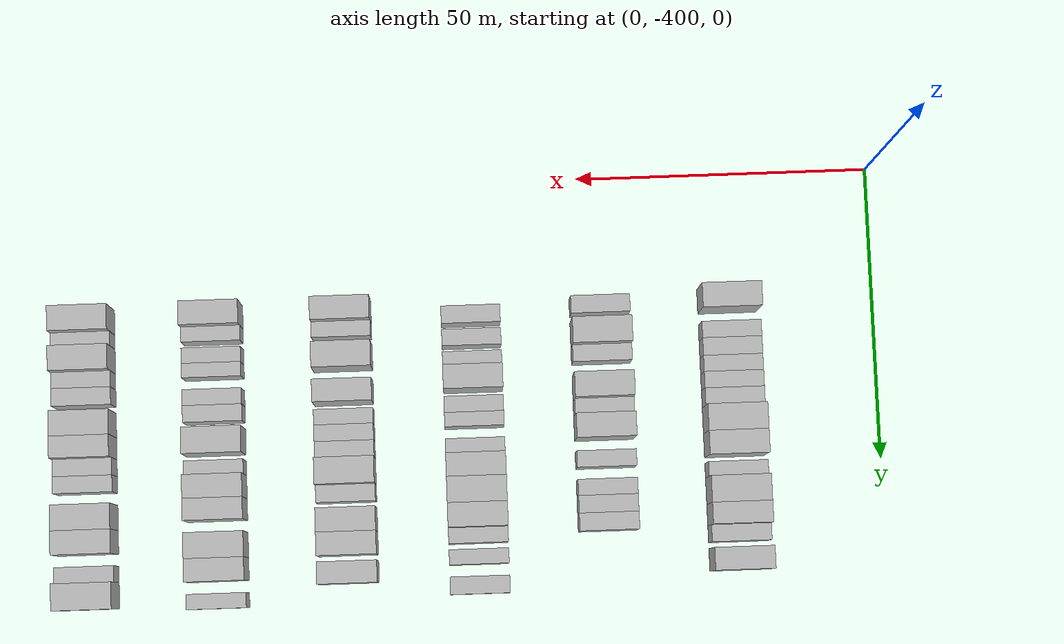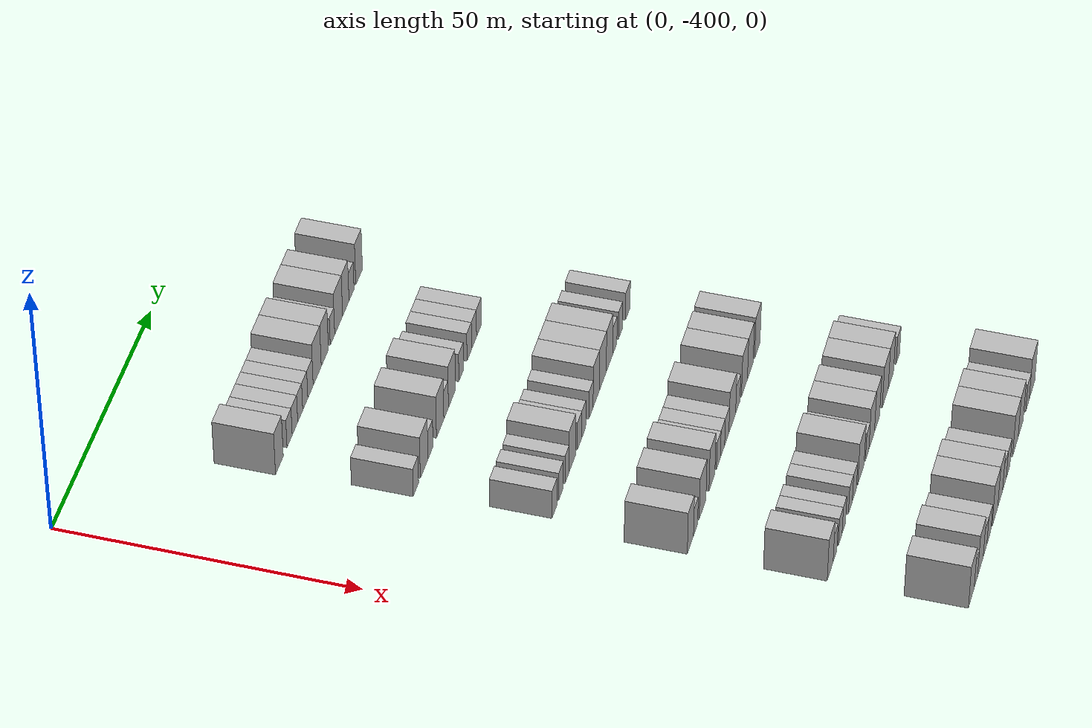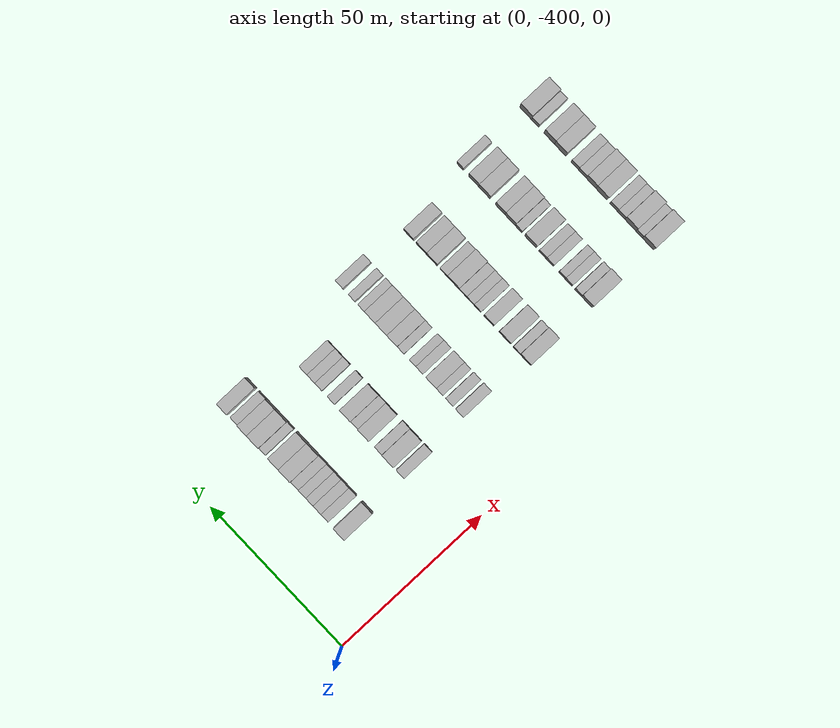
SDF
<sdf version="1.6">
 <world name="default">
  <model name="building_1">
   <static>1</static>
   <pose>25.0000 -377.9180 0 0.000000 0.000000 0.000000</pose>
   <link name="link">
    <pose>0 0 4.50 0 0 0</pose>
    <collision name="collision"><geometry><box><size>10.0000 4.1641 9.0000</size></box></geometry></collision>
    <visual name="visual">
     <cast_shadows>0</cast_shadows>
     <geometry><box><size>10.0000 4.1641 9.0000</size></box></geometry>
     <material>
      <script>
       <uri>model://HANNAS_wall/materials/scripts</uri>
       <uri>model://HANNAS_wall/materials/textures</uri>
       <name>vrc/HANNAS_wall</name>
      </script>
     </material>
    </visual>
   </link>
  </model>
  <model name="building_2">
   <static>1</static>
   <pose>25.0000 -372.4403 0 0.000000 0.000000 0.000000</pose>
   <link name="link">
    <pose>0 0 3.00 0 0 0</pose>
    <collision name="collision"><geometry><box><size>10.0000 2.7912 6.0000</size></box></geometry></collision>
    <visual name="visual">
     <cast_shadows>0</cast_shadows>
     <geometry><box><size>10.0000 2.7912 6.0000</size></box></geometry>
     <material>
      <script>
       <uri>model://HANNAS_wall/materials/scripts</uri>
       <uri>model://HANNAS_wall/materials/textures</uri>
       <name>vrc/HANNAS_wall</name>
      </script>
     </material>
    </visual>
   </link>
  </model>
  <model name="building_3">
   <static>1</static>
   <pose>25.0000 -369.5470 0 0.000000 0.000000 0.000000</pose>
   <link name="link">
    <pose>0 0 3.00 0 0 0</pose>
    <collision name="collision"><geometry><box><size>10.0000 2.9956 6.0000</size></box></geometry></collision>
    <visual name="visual">
     <cast_shadows>0</cast_shadows>
     <geometry><box><size>10.0000 2.9956 6.0000</size></box></geometry>
     <material>
      <script>
       <uri>model://HANNAS_wall/materials/scripts</uri>
       <uri>model://HANNAS_wall/materials/textures</uri>
       <name>vrc/HANNAS_wall</name>
      </script>
     </material>
    </visual>
   </link>
  </model>
  <model name="building_4">
   <static>1</static>
   <pose>25.0000 -366.6835 0 0.000000 0.000000 0.000000</pose>
   <link name="link">
    <pose>0 0 3.00 0 0 0</pose>
    <collision name="collision"><geometry><box><size>10.0000 2.7314 6.0000</size></box></geometry></collision>
    <visual name="visual">
     <cast_shadows>0</cast_shadows>
     <geometry><box><size>10.0000 2.7314 6.0000</size></box></geometry>
     <material>
      <script>
       <uri>model://HANNAS_wall/materials/scripts</uri>
       <uri>model://HANNAS_wall/materials/textures</uri>
       <name>vrc/HANNAS_wall</name>
      </script>
     </material>
    </visual>
   </link>
  </model>
  <model name="building_5">
   <static>1</static>
   <pose>25.0000 -363.9292 0 0.000000 0.000000 0.000000</pose>
   <link name="link">
    <pose>0 0 3.00 0 0 0</pose>
    <collision name="collision"><geometry><box><size>10.0000 2.7772 6.0000</size></box></geometry></collision>
    <visual name="visual">
     <cast_shadows>0</cast_shadows>
     <geometry><box><size>10.0000 2.7772 6.0000</size></box></geometry>
     <material>
      <script>
       <uri>model://HANNAS_wall/materials/scripts</uri>
       <uri>model://HANNAS_wall/materials/textures</uri>
       <name>vrc/HANNAS_wall</name>
      </script>
     </material>
    </visual>
   </link>
  </model>
  <model name="building_6">
   <static>1</static>
   <pose>25.0000 -361.0685 0 0.000000 0.000000 0.000000</pose>
   <link name="link">
    <pose>0 0 3.00 0 0 0</pose>
    <collision name="collision"><geometry><box><size>10.0000 2.9442 6.0000</size></box></geometry></collision>
    <visual name="visual">
     <cast_shadows>0</cast_shadows>
     <geometry><box><size>10.0000 2.9442 6.0000</size></box></geometry>
     <material>
      <script>
       <uri>model://HANNAS_wall/materials/scripts</uri>
       <uri>model://HANNAS_wall/materials/textures</uri>
       <name>vrc/HANNAS_wall</name>
      </script>
     </material>
    </visual>
   </link>
  </model>
  <model name="building_7">
   <static>1</static>
   <pose>25.0000 -357.3652 0 0.000000 0.000000 0.000000</pose>
   <link name="link">
    <pose>0 0 4.50 0 0 0</pose>
    <collision name="collision"><geometry><box><size>10.0000 4.4624 9.0000</size></box></geometry></collision>
    <visual name="visual">
     <cast_shadows>0</cast_shadows>
     <geometry><box><size>10.0000 4.4624 9.0000</size></box></geometry>
     <material>
      <script>
       <uri>model://HANNAS_wall/materials/scripts</uri>
       <uri>model://HANNAS_wall/materials/textures</uri>
       <name>vrc/HANNAS_wall</name>
      </script>
     </material>
    </visual>
   </link>
  </model>
  <model name="building_8">
   <static>1</static>
   <pose>25.0000 -353.1340 0 0.000000 0.000000 0.000000</pose>
   <link name="link">
    <pose>0 0 4.50 0 0 0</pose>
    <collision name="collision"><geometry><box><size>10.0000 4.0000 9.0000</size></box></geometry></collision>
    <visual name="visual">
     <cast_shadows>0</cast_shadows>
     <geometry><box><size>10.0000 4.0000 9.0000</size></box></geometry>
     <material>
      <script>
       <uri>model://HANNAS_wall/materials/scripts</uri>
       <uri>model://HANNAS_wall/materials/textures</uri>
       <name>vrc/HANNAS_wall</name>
      </script>
     </material>
    </visual>
   </link>
  </model>
  <model name="building_9">
   <static>1</static>
   <pose>25.0000 -348.8813 0 0.000000 0.000000 0.000000</pose>
   <link name="link">
    <pose>0 0 3.00 0 0 0</pose>
    <collision name="collision"><geometry><box><size>10.0000 2.5055 6.0000</size></box></geometry></collision>
    <visual name="visual">
     <cast_shadows>0</cast_shadows>
     <geometry><box><size>10.0000 2.5055 6.0000</size></box></geometry>
     <material>
      <script>
       <uri>model://HANNAS_wall/materials/scripts</uri>
       <uri>model://HANNAS_wall/materials/textures</uri>
       <name>vrc/HANNAS_wall</name>
      </script>
     </material>
    </visual>
   </link>
  </model>
  <model name="building_10">
   <static>1</static>
   <pose>25.0000 -345.4044 0 0.000000 0.000000 0.000000</pose>
   <link name="link">
    <pose>0 0 4.50 0 0 0</pose>
    <collision name="collision"><geometry><box><size>10.0000 4.4482 9.0000</size></box></geometry></collision>
    <visual name="visual">
     <cast_shadows>0</cast_shadows>
     <geometry><box><size>10.0000 4.4482 9.0000</size></box></geometry>
     <material>
      <script>
       <uri>model://HANNAS_wall/materials/scripts</uri>
       <uri>model://HANNAS_wall/materials/textures</uri>
       <name>vrc/HANNAS_wall</name>
      </script>
     </material>
    </visual>
   </link>
  </model>
  <model name="building_11">
   <static>1</static>
   <pose>25.0000 -341.3734 0 0.000000 0.000000 0.000000</pose>
   <link name="link">
    <pose>0 0 4.50 0 0 0</pose>
    <collision name="collision"><geometry><box><size>10.0000 3.6137 9.0000</size></box></geometry></collision>
    <visual name="visual">
     <cast_shadows>0</cast_shadows>
     <geometry><box><size>10.0000 3.6137 9.0000</size></box></geometry>
     <material>
      <script>
       <uri>model://HANNAS_wall/materials/scripts</uri>
       <uri>model://HANNAS_wall/materials/textures</uri>
       <name>vrc/HANNAS_wall</name>
      </script>
     </material>
    </visual>
   </link>
  </model>
  <model name="building_12">
   <static>1</static>
   <pose>25.0000 -338.1369 0 0.000000 0.000000 0.000000</pose>
   <link name="link">
    <pose>0 0 3.00 0 0 0</pose>
    <collision name="collision"><geometry><box><size>10.0000 2.8593 6.0000</size></box></geometry></collision>
    <visual name="visual">
     <cast_shadows>0</cast_shadows>
     <geometry><box><size>10.0000 2.8593 6.0000</size></box></geometry>
     <material>
      <script>
       <uri>model://HANNAS_wall/materials/scripts</uri>
       <uri>model://HANNAS_wall/materials/textures</uri>
       <name>vrc/HANNAS_wall</name>
      </script>
     </material>
    </visual>
   </link>
  </model>
  <model name="building_13">
   <static>1</static>
   <pose>25.0000 -333.8080 0 0.000000 0.000000 0.000000</pose>
   <link name="link">
    <pose>0 0 4.50 0 0 0</pose>
    <collision name="collision"><geometry><box><size>10.0000 3.7986 9.0000</size></box></geometry></collision>
    <visual name="visual">
     <cast_shadows>0</cast_shadows>
     <geometry><box><size>10.0000 3.7986 9.0000</size></box></geometry>
     <material>
      <script>
       <uri>model://HANNAS_wall/materials/scripts</uri>
       <uri>model://HANNAS_wall/materials/textures</uri>
       <name>vrc/HANNAS_wall</name>
      </script>
     </material>
    </visual>
   </link>
  </model>
  <model name="building_186">
   <static>1</static>
   <pose>47.0000 -377.5033 0 0.000000 0.000000 0.000000</pose>
   <link name="link">
    <pose>0 0 3.00 0 0 0</pose>
    <collision name="collision"><geometry><box><size>10.0000 2.9934 6.0000</size></box></geometry></collision>
    <visual name="visual">
     <cast_shadows>0</cast_shadows>
     <geometry><box><size>10.0000 2.9934 6.0000</size></box></geometry>
     <material>
      <script>
       <uri>model://HANNAS_wall/materials/scripts</uri>
       <uri>model://HANNAS_wall/materials/textures</uri>
       <name>vrc/HANNAS_wall</name>
      </script>
     </material>
    </visual>
   </link>
  </model>
  <model name="building_187">
   <static>1</static>
   <pose>47.0000 -372.8135 0 0.000000 0.000000 0.000000</pose>
   <link name="link">
    <pose>0 0 4.50 0 0 0</pose>
    <collision name="collision"><geometry><box><size>10.0000 4.3862 9.0000</size></box></geometry></collision>
    <visual name="visual">
     <cast_shadows>0</cast_shadows>
     <geometry><box><size>10.0000 4.3862 9.0000</size></box></geometry>
     <material>
      <script>
       <uri>model://HANNAS_wall/materials/scripts</uri>
       <uri>model://HANNAS_wall/materials/textures</uri>
       <name>vrc/HANNAS_wall</name>
      </script>
     </material>
    </visual>
   </link>
  </model>
  <model name="building_188">
   <static>1</static>
   <pose>47.0000 -369.1924 0 0.000000 0.000000 0.000000</pose>
   <link name="link">
    <pose>0 0 3.00 0 0 0</pose>
    <collision name="collision"><geometry><box><size>10.0000 2.8560 6.0000</size></box></geometry></collision>
    <visual name="visual">
     <cast_shadows>0</cast_shadows>
     <geometry><box><size>10.0000 2.8560 6.0000</size></box></geometry>
     <material>
      <script>
       <uri>model://HANNAS_wall/materials/scripts</uri>
       <uri>model://HANNAS_wall/materials/textures</uri>
       <name>vrc/HANNAS_wall</name>
      </script>
     </material>
    </visual>
   </link>
  </model>
  <model name="building_189">
   <static>1</static>
   <pose>47.0000 -363.6487 0 0.000000 0.000000 0.000000</pose>
   <link name="link">
    <pose>0 0 4.50 0 0 0</pose>
    <collision name="collision"><geometry><box><size>10.0000 4.2314 9.0000</size></box></geometry></collision>
    <visual name="visual">
     <cast_shadows>0</cast_shadows>
     <geometry><box><size>10.0000 4.2314 9.0000</size></box></geometry>
     <material>
      <script>
       <uri>model://HANNAS_wall/materials/scripts</uri>
       <uri>model://HANNAS_wall/materials/textures</uri>
       <name>vrc/HANNAS_wall</name>
      </script>
     </material>
    </visual>
   </link>
  </model>
  <model name="building_190">
   <static>1</static>
   <pose>47.0000 -360.1822 0 0.000000 0.000000 0.000000</pose>
   <link name="link">
    <pose>0 0 3.00 0 0 0</pose>
    <collision name="collision"><geometry><box><size>10.0000 2.7015 6.0000</size></box></geometry></collision>
    <visual name="visual">
     <cast_shadows>0</cast_shadows>
     <geometry><box><size>10.0000 2.7015 6.0000</size></box></geometry>
     <material>
      <script>
       <uri>model://HANNAS_wall/materials/scripts</uri>
       <uri>model://HANNAS_wall/materials/textures</uri>
       <name>vrc/HANNAS_wall</name>
      </script>
     </material>
    </visual>
   </link>
  </model>
  <model name="building_191">
   <static>1</static>
   <pose>47.0000 -356.7753 0 0.000000 0.000000 0.000000</pose>
   <link name="link">
    <pose>0 0 4.50 0 0 0</pose>
    <collision name="collision"><geometry><box><size>10.0000 4.1123 9.0000</size></box></geometry></collision>
    <visual name="visual">
     <cast_shadows>0</cast_shadows>
     <geometry><box><size>10.0000 4.1123 9.0000</size></box></geometry>
     <material>
      <script>
       <uri>model://HANNAS_wall/materials/scripts</uri>
       <uri>model://HANNAS_wall/materials/textures</uri>
       <name>vrc/HANNAS_wall</name>
      </script>
     </material>
    </visual>
   </link>
  </model>
  <model name="building_192">
   <static>1</static>
   <pose>47.0000 -351.3215 0 0.000000 0.000000 0.000000</pose>
   <link name="link">
    <pose>0 0 3.00 0 0 0</pose>
    <collision name="collision"><geometry><box><size>10.0000 2.7954 6.0000</size></box></geometry></collision>
    <visual name="visual">
     <cast_shadows>0</cast_shadows>
     <geometry><box><size>10.0000 2.7954 6.0000</size></box></geometry>
     <material>
      <script>
       <uri>model://HANNAS_wall/materials/scripts</uri>
       <uri>model://HANNAS_wall/materials/textures</uri>
       <name>vrc/HANNAS_wall</name>
      </script>
     </material>
    </visual>
   </link>
  </model>
  <model name="building_193">
   <static>1</static>
   <pose>47.0000 -346.5672 0 0.000000 0.000000 0.000000</pose>
   <link name="link">
    <pose>0 0 3.00 0 0 0</pose>
    <collision name="collision"><geometry><box><size>10.0000 2.7132 6.0000</size></box></geometry></collision>
    <visual name="visual">
     <cast_shadows>0</cast_shadows>
     <geometry><box><size>10.0000 2.7132 6.0000</size></box></geometry>
     <material>
      <script>
       <uri>model://HANNAS_wall/materials/scripts</uri>
       <uri>model://HANNAS_wall/materials/textures</uri>
       <name>vrc/HANNAS_wall</name>
      </script>
     </material>
    </visual>
   </link>
  </model>
  <model name="building_194">
   <static>1</static>
   <pose>47.0000 -343.7433 0 0.000000 0.000000 0.000000</pose>
   <link name="link">
    <pose>0 0 3.00 0 0 0</pose>
    <collision name="collision"><geometry><box><size>10.0000 2.9347 6.0000</size></box></geometry></collision>
    <visual name="visual">
     <cast_shadows>0</cast_shadows>
     <geometry><box><size>10.0000 2.9347 6.0000</size></box></geometry>
     <material>
      <script>
       <uri>model://HANNAS_wall/materials/scripts</uri>
       <uri>model://HANNAS_wall/materials/textures</uri>
       <name>vrc/HANNAS_wall</name>
      </script>
     </material>
    </visual>
   </link>
  </model>
  <model name="building_195">
   <static>1</static>
   <pose>47.0000 -340.7795 0 0.000000 0.000000 0.000000</pose>
   <link name="link">
    <pose>0 0 3.00 0 0 0</pose>
    <collision name="collision"><geometry><box><size>10.0000 2.9928 6.0000</size></box></geometry></collision>
    <visual name="visual">
     <cast_shadows>0</cast_shadows>
     <geometry><box><size>10.0000 2.9928 6.0000</size></box></geometry>
     <material>
      <script>
       <uri>model://HANNAS_wall/materials/scripts</uri>
       <uri>model://HANNAS_wall/materials/textures</uri>
       <name>vrc/HANNAS_wall</name>
      </script>
     </material>
    </visual>
   </link>
  </model>
  <model name="building_361">
   <static>1</static>
   <pose>69.0000 -376.5117 0 0.000000 0.000000 0.000000</pose>
   <link name="link">
    <pose>0 0 3.00 0 0 0</pose>
    <collision name="collision"><geometry><box><size>10.0000 2.9767 6.0000</size></box></geometry></collision>
    <visual name="visual">
     <cast_shadows>0</cast_shadows>
     <geometry><box><size>10.0000 2.9767 6.0000</size></box></geometry>
     <material>
      <script>
       <uri>model://HANNAS_wall/materials/scripts</uri>
       <uri>model://HANNAS_wall/materials/textures</uri>
       <name>vrc/HANNAS_wall</name>
      </script>
     </material>
    </visual>
   </link>
  </model>
  <model name="building_362">
   <static>1</static>
   <pose>69.0000 -372.6216 0 0.000000 0.000000 0.000000</pose>
   <link name="link">
    <pose>0 0 3.00 0 0 0</pose>
    <collision name="collision"><geometry><box><size>10.0000 2.8035 6.0000</size></box></geometry></collision>
    <visual name="visual">
     <cast_shadows>0</cast_shadows>
     <geometry><box><size>10.0000 2.8035 6.0000</size></box></geometry>
     <material>
      <script>
       <uri>model://HANNAS_wall/materials/scripts</uri>
       <uri>model://HANNAS_wall/materials/textures</uri>
       <name>vrc/HANNAS_wall</name>
      </script>
     </material>
    </visual>
   </link>
  </model>
  <model name="building_363">
   <static>1</static>
   <pose>69.0000 -368.9727 0 0.000000 0.000000 0.000000</pose>
   <link name="link">
    <pose>0 0 3.00 0 0 0</pose>
    <collision name="collision"><geometry><box><size>10.0000 2.4941 6.0000</size></box></geometry></collision>
    <visual name="visual">
     <cast_shadows>0</cast_shadows>
     <geometry><box><size>10.0000 2.4941 6.0000</size></box></geometry>
     <material>
      <script>
       <uri>model://HANNAS_wall/materials/scripts</uri>
       <uri>model://HANNAS_wall/materials/textures</uri>
       <name>vrc/HANNAS_wall</name>
      </script>
     </material>
    </visual>
   </link>
  </model>
  <model name="building_364">
   <static>1</static>
   <pose>69.0000 -365.6938 0 0.000000 0.000000 0.000000</pose>
   <link name="link">
    <pose>0 0 4.50 0 0 0</pose>
    <collision name="collision"><geometry><box><size>10.0000 4.0637 9.0000</size></box></geometry></collision>
    <visual name="visual">
     <cast_shadows>0</cast_shadows>
     <geometry><box><size>10.0000 4.0637 9.0000</size></box></geometry>
     <material>
      <script>
       <uri>model://HANNAS_wall/materials/scripts</uri>
       <uri>model://HANNAS_wall/materials/textures</uri>
       <name>vrc/HANNAS_wall</name>
      </script>
     </material>
    </visual>
   </link>
  </model>
  <model name="building_365">
   <static>1</static>
   <pose>69.0000 -361.2986 0 0.000000 0.000000 0.000000</pose>
   <link name="link">
    <pose>0 0 3.00 0 0 0</pose>
    <collision name="collision"><geometry><box><size>10.0000 2.7268 6.0000</size></box></geometry></collision>
    <visual name="visual">
     <cast_shadows>0</cast_shadows>
     <geometry><box><size>10.0000 2.7268 6.0000</size></box></geometry>
     <material>
      <script>
       <uri>model://HANNAS_wall/materials/scripts</uri>
       <uri>model://HANNAS_wall/materials/textures</uri>
       <name>vrc/HANNAS_wall</name>
      </script>
     </material>
    </visual>
   </link>
  </model>
  <model name="building_366">
   <static>1</static>
   <pose>69.0000 -358.7259 0 0.000000 0.000000 0.000000</pose>
   <link name="link">
    <pose>0 0 3.00 0 0 0</pose>
    <collision name="collision"><geometry><box><size>10.0000 2.4185 6.0000</size></box></geometry></collision>
    <visual name="visual">
     <cast_shadows>0</cast_shadows>
     <geometry><box><size>10.0000 2.4185 6.0000</size></box></geometry>
     <material>
      <script>
       <uri>model://HANNAS_wall/materials/scripts</uri>
       <uri>model://HANNAS_wall/materials/textures</uri>
       <name>vrc/HANNAS_wall</name>
      </script>
     </material>
    </visual>
   </link>
  </model>
  <model name="building_367">
   <static>1</static>
   <pose>69.0000 -354.2357 0 0.000000 0.000000 0.000000</pose>
   <link name="link">
    <pose>0 0 3.00 0 0 0</pose>
    <collision name="collision"><geometry><box><size>10.0000 2.5620 6.0000</size></box></geometry></collision>
    <visual name="visual">
     <cast_shadows>0</cast_shadows>
     <geometry><box><size>10.0000 2.5620 6.0000</size></box></geometry>
     <material>
      <script>
       <uri>model://HANNAS_wall/materials/scripts</uri>
       <uri>model://HANNAS_wall/materials/textures</uri>
       <name>vrc/HANNAS_wall</name>
      </script>
     </material>
    </visual>
   </link>
  </model>
  <model name="building_368">
   <static>1</static>
   <pose>69.0000 -350.9870 0 0.000000 0.000000 0.000000</pose>
   <link name="link">
    <pose>0 0 4.50 0 0 0</pose>
    <collision name="collision"><geometry><box><size>10.0000 3.9354 9.0000</size></box></geometry></collision>
    <visual name="visual">
     <cast_shadows>0</cast_shadows>
     <geometry><box><size>10.0000 3.9354 9.0000</size></box></geometry>
     <material>
      <script>
       <uri>model://HANNAS_wall/materials/scripts</uri>
       <uri>model://HANNAS_wall/materials/textures</uri>
       <name>vrc/HANNAS_wall</name>
      </script>
     </material>
    </visual>
   </link>
  </model>
  <model name="building_369">
   <static>1</static>
   <pose>69.0000 -346.8364 0 0.000000 0.000000 0.000000</pose>
   <link name="link">
    <pose>0 0 4.50 0 0 0</pose>
    <collision name="collision"><geometry><box><size>10.0000 4.3658 9.0000</size></box></geometry></collision>
    <visual name="visual">
     <cast_shadows>0</cast_shadows>
     <geometry><box><size>10.0000 4.3658 9.0000</size></box></geometry>
     <material>
      <script>
       <uri>model://HANNAS_wall/materials/scripts</uri>
       <uri>model://HANNAS_wall/materials/textures</uri>
       <name>vrc/HANNAS_wall</name>
      </script>
     </material>
    </visual>
   </link>
  </model>
  <model name="building_370">
   <static>1</static>
   <pose>69.0000 -342.6107 0 0.000000 0.000000 0.000000</pose>
   <link name="link">
    <pose>0 0 4.50 0 0 0</pose>
    <collision name="collision"><geometry><box><size>10.0000 4.0856 9.0000</size></box></geometry></collision>
    <visual name="visual">
     <cast_shadows>0</cast_shadows>
     <geometry><box><size>10.0000 4.0856 9.0000</size></box></geometry>
     <material>
      <script>
       <uri>model://HANNAS_wall/materials/scripts</uri>
       <uri>model://HANNAS_wall/materials/textures</uri>
       <name>vrc/HANNAS_wall</name>
      </script>
     </material>
    </visual>
   </link>
  </model>
  <model name="building_371">
   <static>1</static>
   <pose>69.0000 -339.2539 0 0.000000 0.000000 0.000000</pose>
   <link name="link">
    <pose>0 0 3.00 0 0 0</pose>
    <collision name="collision"><geometry><box><size>10.0000 2.6279 6.0000</size></box></geometry></collision>
    <visual name="visual">
     <cast_shadows>0</cast_shadows>
     <geometry><box><size>10.0000 2.6279 6.0000</size></box></geometry>
     <material>
      <script>
       <uri>model://HANNAS_wall/materials/scripts</uri>
       <uri>model://HANNAS_wall/materials/textures</uri>
       <name>vrc/HANNAS_wall</name>
      </script>
     </material>
    </visual>
   </link>
  </model>
  <model name="building_372">
   <static>1</static>
   <pose>69.0000 -335.6719 0 0.000000 0.000000 0.000000</pose>
   <link name="link">
    <pose>0 0 3.00 0 0 0</pose>
    <collision name="collision"><geometry><box><size>10.0000 2.5361 6.0000</size></box></geometry></collision>
    <visual name="visual">
     <cast_shadows>0</cast_shadows>
     <geometry><box><size>10.0000 2.5361 6.0000</size></box></geometry>
     <material>
      <script>
       <uri>model://HANNAS_wall/materials/scripts</uri>
       <uri>model://HANNAS_wall/materials/textures</uri>
       <name>vrc/HANNAS_wall</name>
      </script>
     </material>
    </visual>
   </link>
  </model>
  <model name="building_373">
   <static>1</static>
   <pose>69.0000 -330.9331 0 0.000000 0.000000 0.000000</pose>
   <link name="link">
    <pose>0 0 3.00 0 0 0</pose>
    <collision name="collision"><geometry><box><size>10.0000 2.9416 6.0000</size></box></geometry></collision>
    <visual name="visual">
     <cast_shadows>0</cast_shadows>
     <geometry><box><size>10.0000 2.9416 6.0000</size></box></geometry>
     <material>
      <script>
       <uri>model://HANNAS_wall/materials/scripts</uri>
       <uri>model://HANNAS_wall/materials/textures</uri>
       <name>vrc/HANNAS_wall</name>
      </script>
     </material>
    </visual>
   </link>
  </model>
  <model name="building_554">
   <static>1</static>
   <pose>91.0000 -378.0376 0 0.000000 0.000000 0.000000</pose>
   <link name="link">
    <pose>0 0 4.50 0 0 0</pose>
    <collision name="collision"><geometry><box><size>10.0000 3.9249 9.0000</size></box></geometry></collision>
    <visual name="visual">
     <cast_shadows>0</cast_shadows>
     <geometry><box><size>10.0000 3.9249 9.0000</size></box></geometry>
     <material>
      <script>
       <uri>model://HANNAS_wall/materials/scripts</uri>
       <uri>model://HANNAS_wall/materials/textures</uri>
       <name>vrc/HANNAS_wall</name>
      </script>
     </material>
    </visual>
   </link>
  </model>
  <model name="building_555">
   <static>1</static>
   <pose>91.0000 -374.7478 0 0.000000 0.000000 0.000000</pose>
   <link name="link">
    <pose>0 0 3.00 0 0 0</pose>
    <collision name="collision"><geometry><box><size>10.0000 2.6546 6.0000</size></box></geometry></collision>
    <visual name="visual">
     <cast_shadows>0</cast_shadows>
     <geometry><box><size>10.0000 2.6546 6.0000</size></box></geometry>
     <material>
      <script>
       <uri>model://HANNAS_wall/materials/scripts</uri>
       <uri>model://HANNAS_wall/materials/textures</uri>
       <name>vrc/HANNAS_wall</name>
      </script>
     </material>
    </visual>
   </link>
  </model>
  <model name="building_556">
   <static>1</static>
   <pose>91.0000 -370.2367 0 0.000000 0.000000 0.000000</pose>
   <link name="link">
    <pose>0 0 4.50 0 0 0</pose>
    <collision name="collision"><geometry><box><size>10.0000 4.3676 9.0000</size></box></geometry></collision>
    <visual name="visual">
     <cast_shadows>0</cast_shadows>
     <geometry><box><size>10.0000 4.3676 9.0000</size></box></geometry>
     <material>
      <script>
       <uri>model://HANNAS_wall/materials/scripts</uri>
       <uri>model://HANNAS_wall/materials/textures</uri>
       <name>vrc/HANNAS_wall</name>
      </script>
     </material>
    </visual>
   </link>
  </model>
  <model name="building_557">
   <static>1</static>
   <pose>91.0000 -364.1396 0 0.000000 0.000000 0.000000</pose>
   <link name="link">
    <pose>0 0 4.50 0 0 0</pose>
    <collision name="collision"><geometry><box><size>10.0000 3.8268 9.0000</size></box></geometry></collision>
    <visual name="visual">
     <cast_shadows>0</cast_shadows>
     <geometry><box><size>10.0000 3.8268 9.0000</size></box></geometry>
     <material>
      <script>
       <uri>model://HANNAS_wall/materials/scripts</uri>
       <uri>model://HANNAS_wall/materials/textures</uri>
       <name>vrc/HANNAS_wall</name>
      </script>
     </material>
    </visual>
   </link>
  </model>
  <model name="building_558">
   <static>1</static>
   <pose>91.0000 -359.9173 0 0.000000 0.000000 0.000000</pose>
   <link name="link">
    <pose>0 0 3.00 0 0 0</pose>
    <collision name="collision"><geometry><box><size>10.0000 2.6177 6.0000</size></box></geometry></collision>
    <visual name="visual">
     <cast_shadows>0</cast_shadows>
     <geometry><box><size>10.0000 2.6177 6.0000</size></box></geometry>
     <material>
      <script>
       <uri>model://HANNAS_wall/materials/scripts</uri>
       <uri>model://HANNAS_wall/materials/textures</uri>
       <name>vrc/HANNAS_wall</name>
      </script>
     </material>
    </visual>
   </link>
  </model>
  <model name="building_559">
   <static>1</static>
   <pose>91.0000 -357.2056 0 0.000000 0.000000 0.000000</pose>
   <link name="link">
    <pose>0 0 3.00 0 0 0</pose>
    <collision name="collision"><geometry><box><size>10.0000 2.8058 6.0000</size></box></geometry></collision>
    <visual name="visual">
     <cast_shadows>0</cast_shadows>
     <geometry><box><size>10.0000 2.8058 6.0000</size></box></geometry>
     <material>
      <script>
       <uri>model://HANNAS_wall/materials/scripts</uri>
       <uri>model://HANNAS_wall/materials/textures</uri>
       <name>vrc/HANNAS_wall</name>
      </script>
     </material>
    </visual>
   </link>
  </model>
  <model name="building_560">
   <static>1</static>
   <pose>91.0000 -354.3871 0 0.000000 0.000000 0.000000</pose>
   <link name="link">
    <pose>0 0 3.00 0 0 0</pose>
    <collision name="collision"><geometry><box><size>10.0000 2.8312 6.0000</size></box></geometry></collision>
    <visual name="visual">
     <cast_shadows>0</cast_shadows>
     <geometry><box><size>10.0000 2.8312 6.0000</size></box></geometry>
     <material>
      <script>
       <uri>model://HANNAS_wall/materials/scripts</uri>
       <uri>model://HANNAS_wall/materials/textures</uri>
       <name>vrc/HANNAS_wall</name>
      </script>
     </material>
    </visual>
   </link>
  </model>
  <model name="building_561">
   <static>1</static>
   <pose>91.0000 -350.7262 0 0.000000 0.000000 0.000000</pose>
   <link name="link">
    <pose>0 0 4.50 0 0 0</pose>
    <collision name="collision"><geometry><box><size>10.0000 4.4906 9.0000</size></box></geometry></collision>
    <visual name="visual">
     <cast_shadows>0</cast_shadows>
     <geometry><box><size>10.0000 4.4906 9.0000</size></box></geometry>
     <material>
      <script>
       <uri>model://HANNAS_wall/materials/scripts</uri>
       <uri>model://HANNAS_wall/materials/textures</uri>
       <name>vrc/HANNAS_wall</name>
      </script>
     </material>
    </visual>
   </link>
  </model>
  <model name="building_562">
   <static>1</static>
   <pose>91.0000 -347.0276 0 0.000000 0.000000 0.000000</pose>
   <link name="link">
    <pose>0 0 3.00 0 0 0</pose>
    <collision name="collision"><geometry><box><size>10.0000 2.9065 6.0000</size></box></geometry></collision>
    <visual name="visual">
     <cast_shadows>0</cast_shadows>
     <geometry><box><size>10.0000 2.9065 6.0000</size></box></geometry>
     <material>
      <script>
       <uri>model://HANNAS_wall/materials/scripts</uri>
       <uri>model://HANNAS_wall/materials/textures</uri>
       <name>vrc/HANNAS_wall</name>
      </script>
     </material>
    </visual>
   </link>
  </model>
  <model name="building_563">
   <static>1</static>
   <pose>91.0000 -342.5600 0 0.000000 0.000000 0.000000</pose>
   <link name="link">
    <pose>0 0 4.50 0 0 0</pose>
    <collision name="collision"><geometry><box><size>10.0000 4.0286 9.0000</size></box></geometry></collision>
    <visual name="visual">
     <cast_shadows>0</cast_shadows>
     <geometry><box><size>10.0000 4.0286 9.0000</size></box></geometry>
     <material>
      <script>
       <uri>model://HANNAS_wall/materials/scripts</uri>
       <uri>model://HANNAS_wall/materials/textures</uri>
       <name>vrc/HANNAS_wall</name>
      </script>
     </material>
    </visual>
   </link>
  </model>
  <model name="building_564">
   <static>1</static>
   <pose>91.0000 -338.5941 0 0.000000 0.000000 0.000000</pose>
   <link name="link">
    <pose>0 0 4.50 0 0 0</pose>
    <collision name="collision"><geometry><box><size>10.0000 3.9033 9.0000</size></box></geometry></collision>
    <visual name="visual">
     <cast_shadows>0</cast_shadows>
     <geometry><box><size>10.0000 3.9033 9.0000</size></box></geometry>
     <material>
      <script>
       <uri>model://HANNAS_wall/materials/scripts</uri>
       <uri>model://HANNAS_wall/materials/textures</uri>
       <name>vrc/HANNAS_wall</name>
      </script>
     </material>
    </visual>
   </link>
  </model>
  <model name="building_565">
   <static>1</static>
   <pose>91.0000 -333.7907 0 0.000000 0.000000 0.000000</pose>
   <link name="link">
    <pose>0 0 4.50 0 0 0</pose>
    <collision name="collision"><geometry><box><size>10.0000 3.7033 9.0000</size></box></geometry></collision>
    <visual name="visual">
     <cast_shadows>0</cast_shadows>
     <geometry><box><size>10.0000 3.7033 9.0000</size></box></geometry>
     <material>
      <script>
       <uri>model://HANNAS_wall/materials/scripts</uri>
       <uri>model://HANNAS_wall/materials/textures</uri>
       <name>vrc/HANNAS_wall</name>
      </script>
     </material>
    </visual>
   </link>
  </model>
  <model name="building_748">
   <static>1</static>
   <pose>113.0000 -377.9846 0 0.000000 0.000000 0.000000</pose>
   <link name="link">
    <pose>0 0 4.50 0 0 0</pose>
    <collision name="collision"><geometry><box><size>10.0000 4.0308 9.0000</size></box></geometry></collision>
    <visual name="visual">
     <cast_shadows>0</cast_shadows>
     <geometry><box><size>10.0000 4.0308 9.0000</size></box></geometry>
     <material>
      <script>
       <uri>model://HANNAS_wall/materials/scripts</uri>
       <uri>model://HANNAS_wall/materials/textures</uri>
       <name>vrc/HANNAS_wall</name>
      </script>
     </material>
    </visual>
   </link>
  </model>
  <model name="building_749">
   <static>1</static>
   <pose>113.0000 -374.6909 0 0.000000 0.000000 0.000000</pose>
   <link name="link">
    <pose>0 0 3.00 0 0 0</pose>
    <collision name="collision"><geometry><box><size>10.0000 2.5566 6.0000</size></box></geometry></collision>
    <visual name="visual">
     <cast_shadows>0</cast_shadows>
     <geometry><box><size>10.0000 2.5566 6.0000</size></box></geometry>
     <material>
      <script>
       <uri>model://HANNAS_wall/materials/scripts</uri>
       <uri>model://HANNAS_wall/materials/textures</uri>
       <name>vrc/HANNAS_wall</name>
      </script>
     </material>
    </visual>
   </link>
  </model>
  <model name="building_750">
   <static>1</static>
   <pose>113.0000 -371.1001 0 0.000000 0.000000 0.000000</pose>
   <link name="link">
    <pose>0 0 3.00 0 0 0</pose>
    <collision name="collision"><geometry><box><size>10.0000 2.6250 6.0000</size></box></geometry></collision>
    <visual name="visual">
     <cast_shadows>0</cast_shadows>
     <geometry><box><size>10.0000 2.6250 6.0000</size></box></geometry>
     <material>
      <script>
       <uri>model://HANNAS_wall/materials/scripts</uri>
       <uri>model://HANNAS_wall/materials/textures</uri>
       <name>vrc/HANNAS_wall</name>
      </script>
     </material>
    </visual>
   </link>
  </model>
  <model name="building_751">
   <static>1</static>
   <pose>113.0000 -368.5696 0 0.000000 0.000000 0.000000</pose>
   <link name="link">
    <pose>0 0 3.00 0 0 0</pose>
    <collision name="collision"><geometry><box><size>10.0000 2.4359 6.0000</size></box></geometry></collision>
    <visual name="visual">
     <cast_shadows>0</cast_shadows>
     <geometry><box><size>10.0000 2.4359 6.0000</size></box></geometry>
     <material>
      <script>
       <uri>model://HANNAS_wall/materials/scripts</uri>
       <uri>model://HANNAS_wall/materials/textures</uri>
       <name>vrc/HANNAS_wall</name>
      </script>
     </material>
    </visual>
   </link>
  </model>
  <model name="building_752">
   <static>1</static>
   <pose>113.0000 -363.9987 0 0.000000 0.000000 0.000000</pose>
   <link name="link">
    <pose>0 0 3.00 0 0 0</pose>
    <collision name="collision"><geometry><box><size>10.0000 2.7059 6.0000</size></box></geometry></collision>
    <visual name="visual">
     <cast_shadows>0</cast_shadows>
     <geometry><box><size>10.0000 2.7059 6.0000</size></box></geometry>
     <material>
      <script>
       <uri>model://HANNAS_wall/materials/scripts</uri>
       <uri>model://HANNAS_wall/materials/textures</uri>
       <name>vrc/HANNAS_wall</name>
      </script>
     </material>
    </visual>
   </link>
  </model>
  <model name="building_753">
   <static>1</static>
   <pose>113.0000 -361.2259 0 0.000000 0.000000 0.000000</pose>
   <link name="link">
    <pose>0 0 3.00 0 0 0</pose>
    <collision name="collision"><geometry><box><size>10.0000 2.8399 6.0000</size></box></geometry></collision>
    <visual name="visual">
     <cast_shadows>0</cast_shadows>
     <geometry><box><size>10.0000 2.8399 6.0000</size></box></geometry>
     <material>
      <script>
       <uri>model://HANNAS_wall/materials/scripts</uri>
       <uri>model://HANNAS_wall/materials/textures</uri>
       <name>vrc/HANNAS_wall</name>
      </script>
     </material>
    </visual>
   </link>
  </model>
  <model name="building_754">
   <static>1</static>
   <pose>113.0000 -356.5764 0 0.000000 0.000000 0.000000</pose>
   <link name="link">
    <pose>0 0 4.50 0 0 0</pose>
    <collision name="collision"><geometry><box><size>10.0000 4.4590 9.0000</size></box></geometry></collision>
    <visual name="visual">
     <cast_shadows>0</cast_shadows>
     <geometry><box><size>10.0000 4.4590 9.0000</size></box></geometry>
     <material>
      <script>
       <uri>model://HANNAS_wall/materials/scripts</uri>
       <uri>model://HANNAS_wall/materials/textures</uri>
       <name>vrc/HANNAS_wall</name>
      </script>
     </material>
    </visual>
   </link>
  </model>
  <model name="building_755">
   <static>1</static>
   <pose>113.0000 -352.1093 0 0.000000 0.000000 0.000000</pose>
   <link name="link">
    <pose>0 0 3.00 0 0 0</pose>
    <collision name="collision"><geometry><box><size>10.0000 2.4754 6.0000</size></box></geometry></collision>
    <visual name="visual">
     <cast_shadows>0</cast_shadows>
     <geometry><box><size>10.0000 2.4754 6.0000</size></box></geometry>
     <material>
      <script>
       <uri>model://HANNAS_wall/materials/scripts</uri>
       <uri>model://HANNAS_wall/materials/textures</uri>
       <name>vrc/HANNAS_wall</name>
      </script>
     </material>
    </visual>
   </link>
  </model>
  <model name="building_756">
   <static>1</static>
   <pose>113.0000 -348.8941 0 0.000000 0.000000 0.000000</pose>
   <link name="link">
    <pose>0 0 4.50 0 0 0</pose>
    <collision name="collision"><geometry><box><size>10.0000 3.9551 9.0000</size></box></geometry></collision>
    <visual name="visual">
     <cast_shadows>0</cast_shadows>
     <geometry><box><size>10.0000 3.9551 9.0000</size></box></geometry>
     <material>
      <script>
       <uri>model://HANNAS_wall/materials/scripts</uri>
       <uri>model://HANNAS_wall/materials/textures</uri>
       <name>vrc/HANNAS_wall</name>
      </script>
     </material>
    </visual>
   </link>
  </model>
  <model name="building_757">
   <static>1</static>
   <pose>113.0000 -345.0811 0 0.000000 0.000000 0.000000</pose>
   <link name="link">
    <pose>0 0 4.50 0 0 0</pose>
    <collision name="collision"><geometry><box><size>10.0000 3.6709 9.0000</size></box></geometry></collision>
    <visual name="visual">
     <cast_shadows>0</cast_shadows>
     <geometry><box><size>10.0000 3.6709 9.0000</size></box></geometry>
     <material>
      <script>
       <uri>model://HANNAS_wall/materials/scripts</uri>
       <uri>model://HANNAS_wall/materials/textures</uri>
       <name>vrc/HANNAS_wall</name>
      </script>
     </material>
    </visual>
   </link>
  </model>
  <model name="building_758">
   <static>1</static>
   <pose>113.0000 -339.0918 0 0.000000 0.000000 0.000000</pose>
   <link name="link">
    <pose>0 0 4.50 0 0 0</pose>
    <collision name="collision"><geometry><box><size>10.0000 4.3077 9.0000</size></box></geometry></collision>
    <visual name="visual">
     <cast_shadows>0</cast_shadows>
     <geometry><box><size>10.0000 4.3077 9.0000</size></box></geometry>
     <material>
      <script>
       <uri>model://HANNAS_wall/materials/scripts</uri>
       <uri>model://HANNAS_wall/materials/textures</uri>
       <name>vrc/HANNAS_wall</name>
      </script>
     </material>
    </visual>
   </link>
  </model>
  <model name="building_759">
   <static>1</static>
   <pose>113.0000 -335.0049 0 0.000000 0.000000 0.000000</pose>
   <link name="link">
    <pose>0 0 4.50 0 0 0</pose>
    <collision name="collision"><geometry><box><size>10.0000 3.8661 9.0000</size></box></geometry></collision>
    <visual name="visual">
     <cast_shadows>0</cast_shadows>
     <geometry><box><size>10.0000 3.8661 9.0000</size></box></geometry>
     <material>
      <script>
       <uri>model://HANNAS_wall/materials/scripts</uri>
       <uri>model://HANNAS_wall/materials/textures</uri>
       <name>vrc/HANNAS_wall</name>
      </script>
     </material>
    </visual>
   </link>
  </model>
  <model name="building_760">
   <static>1</static>
   <pose>113.0000 -329.8000 0 0.000000 0.000000 0.000000</pose>
   <link name="link">
    <pose>0 0 3.00 0 0 0</pose>
    <collision name="collision"><geometry><box><size>10.0000 2.5438 6.0000</size></box></geometry></collision>
    <visual name="visual">
     <cast_shadows>0</cast_shadows>
     <geometry><box><size>10.0000 2.5438 6.0000</size></box></geometry>
     <material>
      <script>
       <uri>model://HANNAS_wall/materials/scripts</uri>
       <uri>model://HANNAS_wall/materials/textures</uri>
       <name>vrc/HANNAS_wall</name>
      </script>
     </material>
    </visual>
   </link>
  </model>
  <model name="building_943">
   <static>1</static>
   <pose>135.0000 -377.8703 0 0.000000 0.000000 0.000000</pose>
   <link name="link">
    <pose>0 0 4.50 0 0 0</pose>
    <collision name="collision"><geometry><box><size>10.0000 4.2595 9.0000</size></box></geometry></collision>
    <visual name="visual">
     <cast_shadows>0</cast_shadows>
     <geometry><box><size>10.0000 4.2595 9.0000</size></box></geometry>
     <material>
      <script>
       <uri>model://HANNAS_wall/materials/scripts</uri>
       <uri>model://HANNAS_wall/materials/textures</uri>
       <name>vrc/HANNAS_wall</name>
      </script>
     </material>
    </visual>
   </link>
  </model>
  <model name="building_944">
   <static>1</static>
   <pose>135.0000 -374.5013 0 0.000000 0.000000 0.000000</pose>
   <link name="link">
    <pose>0 0 3.00 0 0 0</pose>
    <collision name="collision"><geometry><box><size>10.0000 2.4785 6.0000</size></box></geometry></collision>
    <visual name="visual">
     <cast_shadows>0</cast_shadows>
     <geometry><box><size>10.0000 2.4785 6.0000</size></box></geometry>
     <material>
      <script>
       <uri>model://HANNAS_wall/materials/scripts</uri>
       <uri>model://HANNAS_wall/materials/textures</uri>
       <name>vrc/HANNAS_wall</name>
      </script>
     </material>
    </visual>
   </link>
  </model>
  <model name="building_945">
   <static>1</static>
   <pose>135.0000 -371.1432 0 0.000000 0.000000 0.000000</pose>
   <link name="link">
    <pose>0 0 4.50 0 0 0</pose>
    <collision name="collision"><geometry><box><size>10.0000 4.2377 9.0000</size></box></geometry></collision>
    <visual name="visual">
     <cast_shadows>0</cast_shadows>
     <geometry><box><size>10.0000 4.2377 9.0000</size></box></geometry>
     <material>
      <script>
       <uri>model://HANNAS_wall/materials/scripts</uri>
       <uri>model://HANNAS_wall/materials/textures</uri>
       <name>vrc/HANNAS_wall</name>
      </script>
     </material>
    </visual>
   </link>
  </model>
  <model name="building_946">
   <static>1</static>
   <pose>135.0000 -367.6591 0 0.000000 0.000000 0.000000</pose>
   <link name="link">
    <pose>0 0 3.00 0 0 0</pose>
    <collision name="collision"><geometry><box><size>10.0000 2.7305 6.0000</size></box></geometry></collision>
    <visual name="visual">
     <cast_shadows>0</cast_shadows>
     <geometry><box><size>10.0000 2.7305 6.0000</size></box></geometry>
     <material>
      <script>
       <uri>model://HANNAS_wall/materials/scripts</uri>
       <uri>model://HANNAS_wall/materials/textures</uri>
       <name>vrc/HANNAS_wall</name>
      </script>
     </material>
    </visual>
   </link>
  </model>
  <model name="building_947">
   <static>1</static>
   <pose>135.0000 -364.7987 0 0.000000 0.000000 0.000000</pose>
   <link name="link">
    <pose>0 0 3.00 0 0 0</pose>
    <collision name="collision"><geometry><box><size>10.0000 2.9903 6.0000</size></box></geometry></collision>
    <visual name="visual">
     <cast_shadows>0</cast_shadows>
     <geometry><box><size>10.0000 2.9903 6.0000</size></box></geometry>
     <material>
      <script>
       <uri>model://HANNAS_wall/materials/scripts</uri>
       <uri>model://HANNAS_wall/materials/textures</uri>
       <name>vrc/HANNAS_wall</name>
      </script>
     </material>
    </visual>
   </link>
  </model>
  <model name="building_948">
   <static>1</static>
   <pose>135.0000 -360.1766 0 0.000000 0.000000 0.000000</pose>
   <link name="link">
    <pose>0 0 4.50 0 0 0</pose>
    <collision name="collision"><geometry><box><size>10.0000 4.2539 9.0000</size></box></geometry></collision>
    <visual name="visual">
     <cast_shadows>0</cast_shadows>
     <geometry><box><size>10.0000 4.2539 9.0000</size></box></geometry>
     <material>
      <script>
       <uri>model://HANNAS_wall/materials/scripts</uri>
       <uri>model://HANNAS_wall/materials/textures</uri>
       <name>vrc/HANNAS_wall</name>
      </script>
     </material>
    </visual>
   </link>
  </model>
  <model name="building_949">
   <static>1</static>
   <pose>135.0000 -356.2033 0 0.000000 0.000000 0.000000</pose>
   <link name="link">
    <pose>0 0 4.50 0 0 0</pose>
    <collision name="collision"><geometry><box><size>10.0000 3.6927 9.0000</size></box></geometry></collision>
    <visual name="visual">
     <cast_shadows>0</cast_shadows>
     <geometry><box><size>10.0000 3.6927 9.0000</size></box></geometry>
     <material>
      <script>
       <uri>model://HANNAS_wall/materials/scripts</uri>
       <uri>model://HANNAS_wall/materials/textures</uri>
       <name>vrc/HANNAS_wall</name>
      </script>
     </material>
    </visual>
   </link>
  </model>
  <model name="building_950">
   <static>1</static>
   <pose>135.0000 -352.9051 0 0.000000 0.000000 0.000000</pose>
   <link name="link">
    <pose>0 0 3.00 0 0 0</pose>
    <collision name="collision"><geometry><box><size>10.0000 2.9038 6.0000</size></box></geometry></collision>
    <visual name="visual">
     <cast_shadows>0</cast_shadows>
     <geometry><box><size>10.0000 2.9038 6.0000</size></box></geometry>
     <material>
      <script>
       <uri>model://HANNAS_wall/materials/scripts</uri>
       <uri>model://HANNAS_wall/materials/textures</uri>
       <name>vrc/HANNAS_wall</name>
      </script>
     </material>
    </visual>
   </link>
  </model>
  <model name="building_951">
   <static>1</static>
   <pose>135.0000 -350.0310 0 0.000000 0.000000 0.000000</pose>
   <link name="link">
    <pose>0 0 3.00 0 0 0</pose>
    <collision name="collision"><geometry><box><size>10.0000 2.8445 6.0000</size></box></geometry></collision>
    <visual name="visual">
     <cast_shadows>0</cast_shadows>
     <geometry><box><size>10.0000 2.8445 6.0000</size></box></geometry>
     <material>
      <script>
       <uri>model://HANNAS_wall/materials/scripts</uri>
       <uri>model://HANNAS_wall/materials/textures</uri>
       <name>vrc/HANNAS_wall</name>
      </script>
     </material>
    </visual>
   </link>
  </model>
  <model name="building_952">
   <static>1</static>
   <pose>135.0000 -344.4559 0 0.000000 0.000000 0.000000</pose>
   <link name="link">
    <pose>0 0 4.50 0 0 0</pose>
    <collision name="collision"><geometry><box><size>10.0000 4.3057 9.0000</size></box></geometry></collision>
    <visual name="visual">
     <cast_shadows>0</cast_shadows>
     <geometry><box><size>10.0000 4.3057 9.0000</size></box></geometry>
     <material>
      <script>
       <uri>model://HANNAS_wall/materials/scripts</uri>
       <uri>model://HANNAS_wall/materials/textures</uri>
       <name>vrc/HANNAS_wall</name>
      </script>
     </material>
    </visual>
   </link>
  </model>
  <model name="building_953">
   <static>1</static>
   <pose>135.0000 -340.2964 0 0.000000 0.000000 0.000000</pose>
   <link name="link">
    <pose>0 0 4.50 0 0 0</pose>
    <collision name="collision"><geometry><box><size>10.0000 4.0133 9.0000</size></box></geometry></collision>
    <visual name="visual">
     <cast_shadows>0</cast_shadows>
     <geometry><box><size>10.0000 4.0133 9.0000</size></box></geometry>
     <material>
      <script>
       <uri>model://HANNAS_wall/materials/scripts</uri>
       <uri>model://HANNAS_wall/materials/textures</uri>
       <name>vrc/HANNAS_wall</name>
      </script>
     </material>
    </visual>
   </link>
  </model>
  <model name="building_954">
   <static>1</static>
   <pose>135.0000 -334.9266 0 0.000000 0.000000 0.000000</pose>
   <link name="link">
    <pose>0 0 3.00 0 0 0</pose>
    <collision name="collision"><geometry><box><size>10.0000 2.7262 6.0000</size></box></geometry></collision>
    <visual name="visual">
     <cast_shadows>0</cast_shadows>
     <geometry><box><size>10.0000 2.7262 6.0000</size></box></geometry>
     <material>
      <script>
       <uri>model://HANNAS_wall/materials/scripts</uri>
       <uri>model://HANNAS_wall/materials/textures</uri>
       <name>vrc/HANNAS_wall</name>
      </script>
     </material>
    </visual>
   </link>
  </model>
  <model name="building_955">
   <static>1</static>
   <pose>135.0000 -331.3244 0 0.000000 0.000000 0.000000</pose>
   <link name="link">
    <pose>0 0 4.50 0 0 0</pose>
    <collision name="collision"><geometry><box><size>10.0000 4.4781 9.0000</size></box></geometry></collision>
    <visual name="visual">
     <cast_shadows>0</cast_shadows>
     <geometry><box><size>10.0000 4.4781 9.0000</size></box></geometry>
     <material>
      <script>
       <uri>model://HANNAS_wall/materials/scripts</uri>
       <uri>model://HANNAS_wall/materials/textures</uri>
       <name>vrc/HANNAS_wall</name>
      </script>
     </material>
    </visual>
   </link>
  </model>
 </world>
</sdf>
